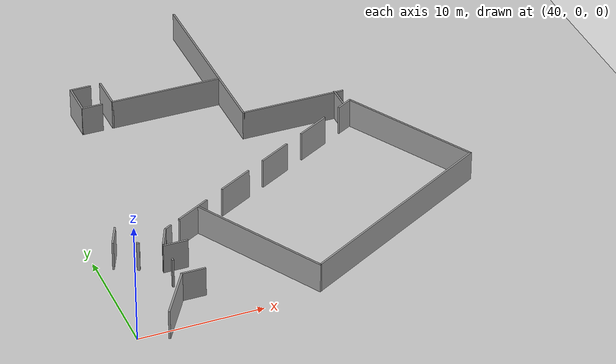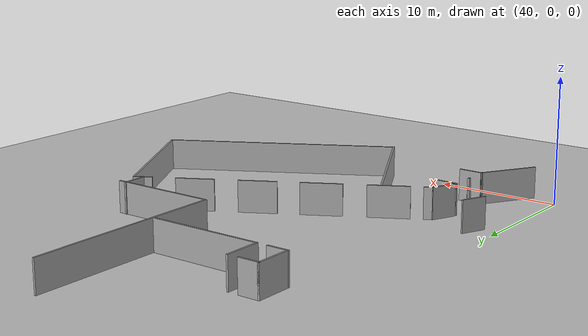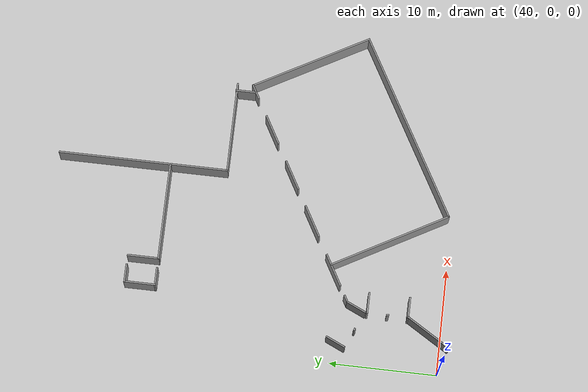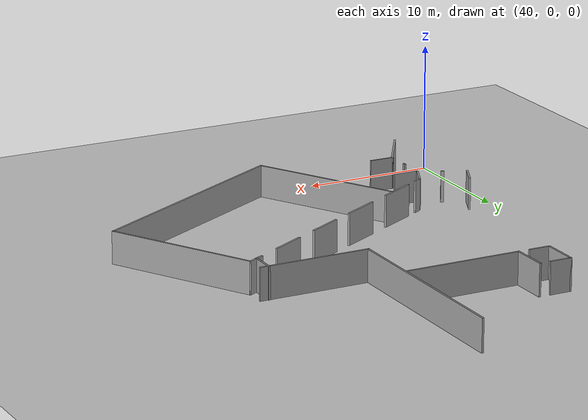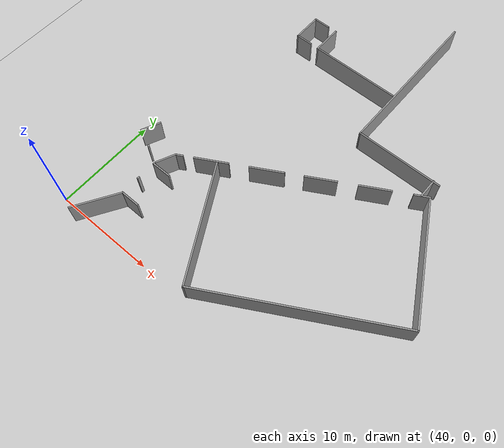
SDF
<sdf version="1.6">
 <world name="default">
  <model name="ground_plane">
   <static>1</static>
   <link name="link">
    <collision name="collision">
     <geometry><plane><normal>0 0 1</normal><size>100 100</size></plane></geometry>
     <surface>
      <contact><collide_bitmask>65535</collide_bitmask></contact>
      <friction><ode><mu>100</mu><mu2>50</mu2></ode></friction>
     </surface>
    </collision>
    <visual name="visual">
     <cast_shadows>0</cast_shadows>
     <geometry><plane><normal>0 0 1</normal><size>100 100</size></plane></geometry>
     <material>
      <script><uri>file://media/materials/scripts/gazebo.material</uri><name>Gazebo/Grey</name></script>
     </material>
    </visual>
   </link>
  </model>
  <model name="199D">
   <link name="Wall_52">
    <pose>9.42521 6e-05 0 0 0 -1.5708</pose>
    <visual name="Wall_52_Visual">
     <pose>0 0 1.25 0 -0 0</pose>
     <geometry><box><size>12 0.15 2.5</size></box></geometry>
     <material>
      <script><uri>file://media/materials/scripts/gazebo.material</uri><name>Gazebo/Grey</name></script>
      <ambient>1 1 1 1</ambient>
      <shader type="pixel"/>
     </material>
     <meta><layer>0</layer></meta>
    </visual>
    <collision name="Wall_52_Collision">
     <pose>0 0 1.25 0 -0 0</pose>
     <geometry><box><size>12 0.15 2.5</size></box></geometry>
     <surface>
      <friction>
       <ode><mu>1</mu><mu2>1</mu2><fdir1>0 0 0</fdir1><slip1>0</slip1><slip2>0</slip2></ode>
       <torsional>
        <coefficient>1</coefficient>
        <patch_radius>0</patch_radius>
        <surface_radius>0</surface_radius>
        <use_patch_radius>1</use_patch_radius>
        <ode><slip>0</slip></ode>
       </torsional>
      </friction>
      <bounce><restitution_coefficient>0</restitution_coefficient><threshold>1e+06</threshold></bounce>
      <contact>
       <collide_without_contact>0</collide_without_contact>
       <collide_without_contact_bitmask>1</collide_without_contact_bitmask>
       <collide_bitmask>1</collide_bitmask>
       <ode>
        <soft_cfm>0</soft_cfm>
        <soft_erp>0.2</soft_erp>
        <kp>1e+13</kp>
        <kd>1</kd>
        <max_vel>0.01</max_vel>
        <min_depth>0</min_depth>
       </ode>
       <bullet>
        <split_impulse>1</split_impulse>
        <split_impulse_penetration_threshold>-0.01</split_impulse_penetration_threshold>
        <soft_cfm>0</soft_cfm>
        <soft_erp>0.2</soft_erp>
        <kp>1e+13</kp>
        <kd>1</kd>
       </bullet>
      </contact>
     </surface>
    </collision>
   </link>
   <link name="Wall_53">
    <pose>-0 -5.925 0 0 0 -3.14159</pose>
    <visual name="Wall_53_Visual">
     <pose>0 0 1.25 0 -0 0</pose>
     <geometry><box><size>19 0.15 2.5</size></box></geometry>
     <material>
      <script><uri>file://media/materials/scripts/gazebo.material</uri><name>Gazebo/Grey</name></script>
      <ambient>1 1 1 1</ambient>
      <shader type="pixel"/>
     </material>
     <meta><layer>0</layer></meta>
    </visual>
    <collision name="Wall_53_Collision">
     <pose>0 0 1.25 0 -0 0</pose>
     <geometry><box><size>19 0.15 2.5</size></box></geometry>
     <surface>
      <friction>
       <ode><mu>1</mu><mu2>1</mu2><fdir1>0 0 0</fdir1><slip1>0</slip1><slip2>0</slip2></ode>
       <torsional>
        <coefficient>1</coefficient>
        <patch_radius>0</patch_radius>
        <surface_radius>0</surface_radius>
        <use_patch_radius>1</use_patch_radius>
        <ode><slip>0</slip></ode>
       </torsional>
      </friction>
      <bounce><restitution_coefficient>0</restitution_coefficient><threshold>1e+06</threshold></bounce>
      <contact>
       <collide_without_contact>0</collide_without_contact>
       <collide_without_contact_bitmask>1</collide_without_contact_bitmask>
       <collide_bitmask>1</collide_bitmask>
       <ode>
        <soft_cfm>0</soft_cfm>
        <soft_erp>0.2</soft_erp>
        <kp>1e+13</kp>
        <kd>1</kd>
        <max_vel>0.01</max_vel>
        <min_depth>0</min_depth>
       </ode>
       <bullet>
        <split_impulse>1</split_impulse>
        <split_impulse_penetration_threshold>-0.01</split_impulse_penetration_threshold>
        <soft_cfm>0</soft_cfm>
        <soft_erp>0.2</soft_erp>
        <kp>1e+13</kp>
        <kd>1</kd>
       </bullet>
      </contact>
     </surface>
    </collision>
   </link>
   <link name="Wall_54">
    <pose>-9.42521 -6e-05 0 0 -0 1.5708</pose>
    <visual name="Wall_54_Visual">
     <pose>0 0 1.25 0 -0 0</pose>
     <geometry><box><size>12 0.15 2.5</size></box></geometry>
     <material>
      <script><uri>file://media/materials/scripts/gazebo.material</uri><name>Gazebo/Grey</name></script>
      <ambient>1 1 1 1</ambient>
      <shader type="pixel"/>
     </material>
     <meta><layer>0</layer></meta>
    </visual>
    <collision name="Wall_54_Collision">
     <pose>0 0 1.25 0 -0 0</pose>
     <geometry><box><size>12 0.15 2.5</size></box></geometry>
     <surface>
      <friction>
       <ode><mu>1</mu><mu2>1</mu2><fdir1>0 0 0</fdir1><slip1>0</slip1><slip2>0</slip2></ode>
       <torsional>
        <coefficient>1</coefficient>
        <patch_radius>0</patch_radius>
        <surface_radius>0</surface_radius>
        <use_patch_radius>1</use_patch_radius>
        <ode><slip>0</slip></ode>
       </torsional>
      </friction>
      <bounce><restitution_coefficient>0</restitution_coefficient><threshold>1e+06</threshold></bounce>
      <contact>
       <collide_without_contact>0</collide_without_contact>
       <collide_without_contact_bitmask>1</collide_without_contact_bitmask>
       <collide_bitmask>1</collide_bitmask>
       <ode>
        <soft_cfm>0</soft_cfm>
        <soft_erp>0.2</soft_erp>
        <kp>1e+13</kp>
        <kd>1</kd>
        <max_vel>0.01</max_vel>
        <min_depth>0</min_depth>
       </ode>
       <bullet>
        <split_impulse>1</split_impulse>
        <split_impulse_penetration_threshold>-0.01</split_impulse_penetration_threshold>
        <soft_cfm>0</soft_cfm>
        <soft_erp>0.2</soft_erp>
        <kp>1e+13</kp>
        <kd>1</kd>
       </bullet>
      </contact>
     </surface>
    </collision>
   </link>
   <static>1</static>
   <pose>59.9873 10.1778 0 0 -0 0.50826</pose>
  </model>
  <model name="4m_wall_0">
   <link name="Wall_0">
    <pose>0.010109 0.248804 0 0 -0 1.67919</pose>
    <inertial>
     <inertia><ixx>0</ixx><ixy>0</ixy><ixz>0</ixz><iyy>0</iyy><iyz>0</iyz><izz>0</izz></inertia>
     <mass>0</mass>
    </inertial>
    <visual name="Wall_0_Visual">
     <pose>0 0 1.25 0 -0 0</pose>
     <geometry><box><size>4.81886 0.15 2.5</size></box></geometry>
     <material>
      <script><uri>file://media/materials/scripts/gazebo.material</uri><name>Gazebo/Grey</name></script>
      <ambient>1 1 1 1</ambient>
      <shader type="pixel"/>
     </material>
     <meta><layer>0</layer></meta>
    </visual>
    <collision name="Wall_0_Collision">
     <pose>0 0 1.25 0 -0 0</pose>
     <geometry><box><size>4.81886 0.15 2.5</size></box></geometry>
     <surface>
      <friction>
       <ode><mu>1</mu><mu2>1</mu2><fdir1>0 0 0</fdir1><slip1>0</slip1><slip2>0</slip2></ode>
       <torsional>
        <coefficient>1</coefficient>
        <patch_radius>0</patch_radius>
        <surface_radius>0</surface_radius>
        <use_patch_radius>1</use_patch_radius>
        <ode><slip>0</slip></ode>
       </torsional>
      </friction>
      <bounce><restitution_coefficient>0</restitution_coefficient><threshold>1e+06</threshold></bounce>
      <contact>
       <collide_without_contact>0</collide_without_contact>
       <collide_without_contact_bitmask>1</collide_without_contact_bitmask>
       <collide_bitmask>1</collide_bitmask>
       <ode>
        <soft_cfm>0</soft_cfm>
        <soft_erp>0.2</soft_erp>
        <kp>1e+13</kp>
        <kd>1</kd>
        <max_vel>0.01</max_vel>
        <min_depth>0</min_depth>
       </ode>
       <bullet>
        <split_impulse>1</split_impulse>
        <split_impulse_penetration_threshold>-0.01</split_impulse_penetration_threshold>
        <soft_cfm>0</soft_cfm>
        <soft_erp>0.2</soft_erp>
        <kp>1e+13</kp>
        <kd>1</kd>
       </bullet>
      </contact>
     </surface>
    </collision>
   </link>
   <static>1</static>
   <pose>43.3173 1.04811 0 0 0 -0.66127</pose>
  </model>
  <model name="longWall">
   <link name="Wall_13">
    <pose>-4.259 0.89147 0 0 0 -1.5708</pose>
    <visual name="Wall_13_Visual">
     <pose>0 0 1.25 0 -0 0</pose>
     <geometry><box><size>16 0.15 2.5</size></box></geometry>
     <material>
      <script><uri>file://media/materials/scripts/gazebo.material</uri><name>Gazebo/Grey</name></script>
      <ambient>1 1 1 1</ambient>
      <shader type="pixel"/>
     </material>
     <meta><layer>0</layer></meta>
    </visual>
    <collision name="Wall_13_Collision">
     <pose>0 0 1.25 0 -0 0</pose>
     <geometry><box><size>16 0.15 2.5</size></box></geometry>
     <surface>
      <friction>
       <ode><mu>1</mu><mu2>1</mu2><fdir1>0 0 0</fdir1><slip1>0</slip1><slip2>0</slip2></ode>
       <torsional>
        <coefficient>1</coefficient>
        <patch_radius>0</patch_radius>
        <surface_radius>0</surface_radius>
        <use_patch_radius>1</use_patch_radius>
        <ode><slip>0</slip></ode>
       </torsional>
      </friction>
      <bounce><restitution_coefficient>0</restitution_coefficient><threshold>1e+06</threshold></bounce>
      <contact>
       <collide_without_contact>0</collide_without_contact>
       <collide_without_contact_bitmask>1</collide_without_contact_bitmask>
       <collide_bitmask>1</collide_bitmask>
       <ode>
        <soft_cfm>0</soft_cfm>
        <soft_erp>0.2</soft_erp>
        <kp>1e+13</kp>
        <kd>1</kd>
        <max_vel>0.01</max_vel>
        <min_depth>0</min_depth>
       </ode>
       <bullet>
        <split_impulse>1</split_impulse>
        <split_impulse_penetration_threshold>-0.01</split_impulse_penetration_threshold>
        <soft_cfm>0</soft_cfm>
        <soft_erp>0.2</soft_erp>
        <kp>1e+13</kp>
        <kd>1</kd>
       </bullet>
      </contact>
     </surface>
    </collision>
   </link>
   <link name="Wall_14">
    <pose>0 -7.03353 0 0 -0 0</pose>
    <visual name="Wall_14_Visual">
     <pose>0 0 1.25 0 -0 0</pose>
     <geometry><box><size>8.668 0.15 2.5</size></box></geometry>
     <material>
      <script><uri>file://media/materials/scripts/gazebo.material</uri><name>Gazebo/Grey</name></script>
      <ambient>1 1 1 1</ambient>
      <shader type="pixel"/>
     </material>
     <meta><layer>0</layer></meta>
    </visual>
    <collision name="Wall_14_Collision">
     <pose>0 0 1.25 0 -0 0</pose>
     <geometry><box><size>8.668 0.15 2.5</size></box></geometry>
     <surface>
      <friction>
       <ode><mu>1</mu><mu2>1</mu2><fdir1>0 0 0</fdir1><slip1>0</slip1><slip2>0</slip2></ode>
       <torsional>
        <coefficient>1</coefficient>
        <patch_radius>0</patch_radius>
        <surface_radius>0</surface_radius>
        <use_patch_radius>1</use_patch_radius>
        <ode><slip>0</slip></ode>
       </torsional>
      </friction>
      <bounce><restitution_coefficient>0</restitution_coefficient><threshold>1e+06</threshold></bounce>
      <contact>
       <collide_without_contact>0</collide_without_contact>
       <collide_without_contact_bitmask>1</collide_without_contact_bitmask>
       <collide_bitmask>1</collide_bitmask>
       <ode>
        <soft_cfm>0</soft_cfm>
        <soft_erp>0.2</soft_erp>
        <kp>1e+13</kp>
        <kd>1</kd>
        <max_vel>0.01</max_vel>
        <min_depth>0</min_depth>
       </ode>
       <bullet>
        <split_impulse>1</split_impulse>
        <split_impulse_penetration_threshold>-0.01</split_impulse_penetration_threshold>
        <soft_cfm>0</soft_cfm>
        <soft_erp>0.2</soft_erp>
        <kp>1e+13</kp>
        <kd>1</kd>
       </bullet>
      </contact>
     </surface>
    </collision>
   </link>
   <link name="Wall_17">
    <pose>3.63759 -7.89147 0 0 0 -1.5708</pose>
    <visual name="Wall_17_Visual">
     <pose>0 0 1.25 0 -0 0</pose>
     <geometry><box><size>2 0.15 2.5</size></box></geometry>
     <material>
      <script><uri>file://media/materials/scripts/gazebo.material</uri><name>Gazebo/Grey</name></script>
      <ambient>1 1 1 1</ambient>
      <shader type="pixel"/>
     </material>
     <meta><layer>0</layer></meta>
    </visual>
    <collision name="Wall_17_Collision">
     <pose>0 0 1.25 0 -0 0</pose>
     <geometry><box><size>2 0.15 2.5</size></box></geometry>
     <surface>
      <friction>
       <ode><mu>1</mu><mu2>1</mu2><fdir1>0 0 0</fdir1><slip1>0</slip1><slip2>0</slip2></ode>
       <torsional>
        <coefficient>1</coefficient>
        <patch_radius>0</patch_radius>
        <surface_radius>0</surface_radius>
        <use_patch_radius>1</use_patch_radius>
        <ode><slip>0</slip></ode>
       </torsional>
      </friction>
      <bounce><restitution_coefficient>0</restitution_coefficient><threshold>1e+06</threshold></bounce>
      <contact>
       <collide_without_contact>0</collide_without_contact>
       <collide_without_contact_bitmask>1</collide_without_contact_bitmask>
       <collide_bitmask>1</collide_bitmask>
       <ode>
        <soft_cfm>0</soft_cfm>
        <soft_erp>0.2</soft_erp>
        <kp>1e+13</kp>
        <kd>1</kd>
        <max_vel>0.01</max_vel>
        <min_depth>0</min_depth>
       </ode>
       <bullet>
        <split_impulse>1</split_impulse>
        <split_impulse_penetration_threshold>-0.01</split_impulse_penetration_threshold>
        <soft_cfm>0</soft_cfm>
        <soft_erp>0.2</soft_erp>
        <kp>1e+13</kp>
        <kd>1</kd>
       </bullet>
      </contact>
     </surface>
    </collision>
   </link>
   <static>1</static>
   <pose>60.9863 28.5267 0 0 -0 0</pose>
  </model>
  <model name="DoubleDoors">
   <link name="Wall_46">
    <pose>1.90014 5.9e-05 0 0 0 -1.5708</pose>
    <visual name="Wall_46_Visual">
     <pose>0 0 1.25 0 -0 0</pose>
     <geometry><box><size>2 0.15 2.5</size></box></geometry>
     <material>
      <script><uri>file://media/materials/scripts/gazebo.material</uri><name>Gazebo/Grey</name></script>
      <ambient>1 1 1 1</ambient>
      <shader type="pixel"/>
     </material>
     <meta><layer>0</layer></meta>
    </visual>
    <collision name="Wall_46_Collision">
     <pose>0 0 1.25 0 -0 0</pose>
     <geometry><box><size>2 0.15 2.5</size></box></geometry>
     <surface>
      <friction>
       <ode><mu>1</mu><mu2>1</mu2><fdir1>0 0 0</fdir1><slip1>0</slip1><slip2>0</slip2></ode>
       <torsional>
        <coefficient>1</coefficient>
        <patch_radius>0</patch_radius>
        <surface_radius>0</surface_radius>
        <use_patch_radius>1</use_patch_radius>
        <ode><slip>0</slip></ode>
       </torsional>
      </friction>
      <bounce><restitution_coefficient>0</restitution_coefficient><threshold>1e+06</threshold></bounce>
      <contact>
       <collide_without_contact>0</collide_without_contact>
       <collide_without_contact_bitmask>1</collide_without_contact_bitmask>
       <collide_bitmask>1</collide_bitmask>
       <ode>
        <soft_cfm>0</soft_cfm>
        <soft_erp>0.2</soft_erp>
        <kp>1e+13</kp>
        <kd>1</kd>
        <max_vel>0.01</max_vel>
        <min_depth>0</min_depth>
       </ode>
       <bullet>
        <split_impulse>1</split_impulse>
        <split_impulse_penetration_threshold>-0.01</split_impulse_penetration_threshold>
        <soft_cfm>0</soft_cfm>
        <soft_erp>0.2</soft_erp>
        <kp>1e+13</kp>
        <kd>1</kd>
       </bullet>
      </contact>
     </surface>
    </collision>
   </link>
   <link name="Wall_48">
    <pose>7e-06 -0.924849 0 0 -0 3.13982</pose>
    <visual name="Wall_48_Visual">
     <pose>0 0 1.25 0 -0 0</pose>
     <geometry><box><size>0.25 0.15 2.5</size></box></geometry>
     <material>
      <script><uri>file://media/materials/scripts/gazebo.material</uri><name>Gazebo/Grey</name></script>
      <ambient>1 1 1 1</ambient>
      <shader type="pixel"/>
     </material>
     <meta><layer>0</layer></meta>
    </visual>
    <collision name="Wall_48_Collision">
     <pose>0 0 1.25 0 -0 0</pose>
     <geometry><box><size>0.25 0.15 2.5</size></box></geometry>
     <surface>
      <friction>
       <ode><mu>1</mu><mu2>1</mu2><fdir1>0 0 0</fdir1><slip1>0</slip1><slip2>0</slip2></ode>
       <torsional>
        <coefficient>1</coefficient>
        <patch_radius>0</patch_radius>
        <surface_radius>0</surface_radius>
        <use_patch_radius>1</use_patch_radius>
        <ode><slip>0</slip></ode>
       </torsional>
      </friction>
      <bounce><restitution_coefficient>0</restitution_coefficient><threshold>1e+06</threshold></bounce>
      <contact>
       <collide_without_contact>0</collide_without_contact>
       <collide_without_contact_bitmask>1</collide_without_contact_bitmask>
       <collide_bitmask>1</collide_bitmask>
       <ode>
        <soft_cfm>0</soft_cfm>
        <soft_erp>0.2</soft_erp>
        <kp>1e+13</kp>
        <kd>1</kd>
        <max_vel>0.01</max_vel>
        <min_depth>0</min_depth>
       </ode>
       <bullet>
        <split_impulse>1</split_impulse>
        <split_impulse_penetration_threshold>-0.01</split_impulse_penetration_threshold>
        <soft_cfm>0</soft_cfm>
        <soft_erp>0.2</soft_erp>
        <kp>1e+13</kp>
        <kd>1</kd>
       </bullet>
      </contact>
     </surface>
    </collision>
   </link>
   <link name="Wall_50">
    <pose>-1.9 0.00015 0 0 -0 1.57065</pose>
    <visual name="Wall_50_Visual">
     <pose>0 0 1.25 0 -0 0</pose>
     <geometry><box><size>1.99982 0.15 2.5</size></box></geometry>
     <material>
      <script><uri>file://media/materials/scripts/gazebo.material</uri><name>Gazebo/Grey</name></script>
      <ambient>1 1 1 1</ambient>
      <shader type="pixel"/>
     </material>
     <meta><layer>0</layer></meta>
    </visual>
    <collision name="Wall_50_Collision">
     <pose>0 0 1.25 0 -0 0</pose>
     <geometry><box><size>1.99982 0.15 2.5</size></box></geometry>
     <surface>
      <friction>
       <ode><mu>1</mu><mu2>1</mu2><fdir1>0 0 0</fdir1><slip1>0</slip1><slip2>0</slip2></ode>
       <torsional>
        <coefficient>1</coefficient>
        <patch_radius>0</patch_radius>
        <surface_radius>0</surface_radius>
        <use_patch_radius>1</use_patch_radius>
        <ode><slip>0</slip></ode>
       </torsional>
      </friction>
      <bounce><restitution_coefficient>0</restitution_coefficient><threshold>1e+06</threshold></bounce>
      <contact>
       <collide_without_contact>0</collide_without_contact>
       <collide_without_contact_bitmask>1</collide_without_contact_bitmask>
       <collide_bitmask>1</collide_bitmask>
       <ode>
        <soft_cfm>0</soft_cfm>
        <soft_erp>0.2</soft_erp>
        <kp>1e+13</kp>
        <kd>1</kd>
        <max_vel>0.01</max_vel>
        <min_depth>0</min_depth>
       </ode>
       <bullet>
        <split_impulse>1</split_impulse>
        <split_impulse_penetration_threshold>-0.01</split_impulse_penetration_threshold>
        <soft_cfm>0</soft_cfm>
        <soft_erp>0.2</soft_erp>
        <kp>1e+13</kp>
        <kd>1</kd>
       </bullet>
      </contact>
     </surface>
    </collision>
   </link>
   <static>1</static>
   <pose>43.3671 8.87466 0 0 0 -0.425005</pose>
  </model>
  <model name="DoubleDoors_0">
   <link name="Wall_46">
    <pose>1.90014 6e-05 0 0 0 -1.5708</pose>
    <visual name="Wall_46_Visual">
     <pose>0 0 1.25 0 -0 0</pose>
     <geometry><box><size>2 0.15 2.5</size></box></geometry>
     <material>
      <script><uri>file://media/materials/scripts/gazebo.material</uri><name>Gazebo/Grey</name></script>
      <ambient>1 1 1 1</ambient>
      <shader type="pixel"/>
     </material>
     <meta><layer>0</layer></meta>
    </visual>
    <collision name="Wall_46_Collision">
     <pose>0 0 1.25 0 -0 0</pose>
     <geometry><box><size>2 0.15 2.5</size></box></geometry>
     <surface>
      <friction>
       <ode><mu>1</mu><mu2>1</mu2><fdir1>0 0 0</fdir1><slip1>0</slip1><slip2>0</slip2></ode>
       <torsional>
        <coefficient>1</coefficient>
        <patch_radius>0</patch_radius>
        <surface_radius>0</surface_radius>
        <use_patch_radius>1</use_patch_radius>
        <ode><slip>0</slip></ode>
       </torsional>
      </friction>
      <bounce><restitution_coefficient>0</restitution_coefficient><threshold>1e+06</threshold></bounce>
      <contact>
       <collide_without_contact>0</collide_without_contact>
       <collide_without_contact_bitmask>1</collide_without_contact_bitmask>
       <collide_bitmask>1</collide_bitmask>
       <ode>
        <soft_cfm>0</soft_cfm>
        <soft_erp>0.2</soft_erp>
        <kp>1e+13</kp>
        <kd>1</kd>
        <max_vel>0.01</max_vel>
        <min_depth>0</min_depth>
       </ode>
       <bullet>
        <split_impulse>1</split_impulse>
        <split_impulse_penetration_threshold>-0.01</split_impulse_penetration_threshold>
        <soft_cfm>0</soft_cfm>
        <soft_erp>0.2</soft_erp>
        <kp>1e+13</kp>
        <kd>1</kd>
       </bullet>
      </contact>
     </surface>
    </collision>
   </link>
   <link name="Wall_48">
    <pose>5e-06 -0.924851 0 0 -0 3.13982</pose>
    <visual name="Wall_48_Visual">
     <pose>0 0 1.25 0 -0 0</pose>
     <geometry><box><size>0.25 0.15 2.5</size></box></geometry>
     <material>
      <script><uri>file://media/materials/scripts/gazebo.material</uri><name>Gazebo/Grey</name></script>
      <ambient>1 1 1 1</ambient>
      <shader type="pixel"/>
     </material>
     <meta><layer>0</layer></meta>
    </visual>
    <collision name="Wall_48_Collision">
     <pose>0 0 1.25 0 -0 0</pose>
     <geometry><box><size>0.25 0.15 2.5</size></box></geometry>
     <surface>
      <friction>
       <ode><mu>1</mu><mu2>1</mu2><fdir1>0 0 0</fdir1><slip1>0</slip1><slip2>0</slip2></ode>
       <torsional>
        <coefficient>1</coefficient>
        <patch_radius>0</patch_radius>
        <surface_radius>0</surface_radius>
        <use_patch_radius>1</use_patch_radius>
        <ode><slip>0</slip></ode>
       </torsional>
      </friction>
      <bounce><restitution_coefficient>0</restitution_coefficient><threshold>1e+06</threshold></bounce>
      <contact>
       <collide_without_contact>0</collide_without_contact>
       <collide_without_contact_bitmask>1</collide_without_contact_bitmask>
       <collide_bitmask>1</collide_bitmask>
       <ode>
        <soft_cfm>0</soft_cfm>
        <soft_erp>0.2</soft_erp>
        <kp>1e+13</kp>
        <kd>1</kd>
        <max_vel>0.01</max_vel>
        <min_depth>0</min_depth>
       </ode>
       <bullet>
        <split_impulse>1</split_impulse>
        <split_impulse_penetration_threshold>-0.01</split_impulse_penetration_threshold>
        <soft_cfm>0</soft_cfm>
        <soft_erp>0.2</soft_erp>
        <kp>1e+13</kp>
        <kd>1</kd>
       </bullet>
      </contact>
     </surface>
    </collision>
   </link>
   <link name="Wall_50">
    <pose>-1.9 0.00015 0 0 -0 1.57065</pose>
    <visual name="Wall_50_Visual">
     <pose>0 0 1.25 0 -0 0</pose>
     <geometry><box><size>1.99982 0.15 2.5</size></box></geometry>
     <material>
      <script><uri>file://media/materials/scripts/gazebo.material</uri><name>Gazebo/Grey</name></script>
      <ambient>1 1 1 1</ambient>
      <shader type="pixel"/>
     </material>
     <meta><layer>0</layer></meta>
    </visual>
    <collision name="Wall_50_Collision">
     <pose>0 0 1.25 0 -0 0</pose>
     <geometry><box><size>1.99982 0.15 2.5</size></box></geometry>
     <surface>
      <friction>
       <ode><mu>1</mu><mu2>1</mu2><fdir1>0 0 0</fdir1><slip1>0</slip1><slip2>0</slip2></ode>
       <torsional>
        <coefficient>1</coefficient>
        <patch_radius>0</patch_radius>
        <surface_radius>0</surface_radius>
        <use_patch_radius>1</use_patch_radius>
        <ode><slip>0</slip></ode>
       </torsional>
      </friction>
      <bounce><restitution_coefficient>0</restitution_coefficient><threshold>1e+06</threshold></bounce>
      <contact>
       <collide_without_contact>0</collide_without_contact>
       <collide_without_contact_bitmask>1</collide_without_contact_bitmask>
       <collide_bitmask>1</collide_bitmask>
       <ode>
        <soft_cfm>0</soft_cfm>
        <soft_erp>0.2</soft_erp>
        <kp>1e+13</kp>
        <kd>1</kd>
        <max_vel>0.01</max_vel>
        <min_depth>0</min_depth>
       </ode>
       <bullet>
        <split_impulse>1</split_impulse>
        <split_impulse_penetration_threshold>-0.01</split_impulse_penetration_threshold>
        <soft_cfm>0</soft_cfm>
        <soft_erp>0.2</soft_erp>
        <kp>1e+13</kp>
        <kd>1</kd>
       </bullet>
      </contact>
     </surface>
    </collision>
   </link>
   <static>1</static>
   <pose>45.6007 5.1223 0 0 0 -1.57504</pose>
  </model>
  <model name="199">
   <link name="Wall_26">
    <pose>10.6 -2e-06 0 0 -0 3.14159</pose>
    <visual name="Wall_26_Visual">
     <pose>0 0 1.25 0 -0 0</pose>
     <geometry><box><size>1.5 0.15 2.5</size></box></geometry>
     <material>
      <script><uri>file://media/materials/scripts/gazebo.material</uri><name>Gazebo/Grey</name></script>
      <ambient>1 1 1 1</ambient>
      <shader type="pixel"/>
     </material>
     <meta><layer>0</layer></meta>
    </visual>
    <collision name="Wall_26_Collision">
     <pose>0 0 1.25 0 -0 0</pose>
     <geometry><box><size>1.5 0.15 2.5</size></box></geometry>
     <surface>
      <friction>
       <ode><mu>1</mu><mu2>1</mu2><fdir1>0 0 0</fdir1><slip1>0</slip1><slip2>0</slip2></ode>
       <torsional>
        <coefficient>1</coefficient>
        <patch_radius>0</patch_radius>
        <surface_radius>0</surface_radius>
        <use_patch_radius>1</use_patch_radius>
        <ode><slip>0</slip></ode>
       </torsional>
      </friction>
      <bounce><restitution_coefficient>0</restitution_coefficient><threshold>1e+06</threshold></bounce>
      <contact>
       <collide_without_contact>0</collide_without_contact>
       <collide_without_contact_bitmask>1</collide_without_contact_bitmask>
       <collide_bitmask>1</collide_bitmask>
       <ode>
        <soft_cfm>0</soft_cfm>
        <soft_erp>0.2</soft_erp>
        <kp>1e+13</kp>
        <kd>1</kd>
        <max_vel>0.01</max_vel>
        <min_depth>0</min_depth>
       </ode>
       <bullet>
        <split_impulse>1</split_impulse>
        <split_impulse_penetration_threshold>-0.01</split_impulse_penetration_threshold>
        <soft_cfm>0</soft_cfm>
        <soft_erp>0.2</soft_erp>
        <kp>1e+13</kp>
        <kd>1</kd>
       </bullet>
      </contact>
     </surface>
    </collision>
   </link>
   <link name="Wall_29">
    <pose>6.55 -0 0 0 -0 3.14159</pose>
    <visual name="Wall_29_Visual">
     <pose>0 0 1.25 0 -0 0</pose>
     <geometry><box><size>3 0.15 2.5</size></box></geometry>
     <material>
      <script><uri>file://media/materials/scripts/gazebo.material</uri><name>Gazebo/Grey</name></script>
      <ambient>1 1 1 1</ambient>
      <shader type="pixel"/>
     </material>
     <meta><layer>0</layer></meta>
    </visual>
    <collision name="Wall_29_Collision">
     <pose>0 0 1.25 0 -0 0</pose>
     <geometry><box><size>3 0.15 2.5</size></box></geometry>
     <surface>
      <friction>
       <ode><mu>1</mu><mu2>1</mu2><fdir1>0 0 0</fdir1><slip1>0</slip1><slip2>0</slip2></ode>
       <torsional>
        <coefficient>1</coefficient>
        <patch_radius>0</patch_radius>
        <surface_radius>0</surface_radius>
        <use_patch_radius>1</use_patch_radius>
        <ode><slip>0</slip></ode>
       </torsional>
      </friction>
      <bounce><restitution_coefficient>0</restitution_coefficient><threshold>1e+06</threshold></bounce>
      <contact>
       <collide_without_contact>0</collide_without_contact>
       <collide_without_contact_bitmask>1</collide_without_contact_bitmask>
       <collide_bitmask>1</collide_bitmask>
       <ode>
        <soft_cfm>0</soft_cfm>
        <soft_erp>0.2</soft_erp>
        <kp>1e+13</kp>
        <kd>1</kd>
        <max_vel>0.01</max_vel>
        <min_depth>0</min_depth>
       </ode>
       <bullet>
        <split_impulse>1</split_impulse>
        <split_impulse_penetration_threshold>-0.01</split_impulse_penetration_threshold>
        <soft_cfm>0</soft_cfm>
        <soft_erp>0.2</soft_erp>
        <kp>1e+13</kp>
        <kd>1</kd>
       </bullet>
      </contact>
     </surface>
    </collision>
   </link>
   <link name="Wall_32">
    <pose>1.75 3e-06 0 0 -0 3.14159</pose>
    <visual name="Wall_32_Visual">
     <pose>0 0 1.25 0 -0 0</pose>
     <geometry><box><size>3 0.15 2.5</size></box></geometry>
     <material>
      <script><uri>file://media/materials/scripts/gazebo.material</uri><name>Gazebo/Grey</name></script>
      <ambient>1 1 1 1</ambient>
      <shader type="pixel"/>
     </material>
     <meta><layer>0</layer></meta>
    </visual>
    <collision name="Wall_32_Collision">
     <pose>0 0 1.25 0 -0 0</pose>
     <geometry><box><size>3 0.15 2.5</size></box></geometry>
     <surface>
      <friction>
       <ode><mu>1</mu><mu2>1</mu2><fdir1>0 0 0</fdir1><slip1>0</slip1><slip2>0</slip2></ode>
       <torsional>
        <coefficient>1</coefficient>
        <patch_radius>0</patch_radius>
        <surface_radius>0</surface_radius>
        <use_patch_radius>1</use_patch_radius>
        <ode><slip>0</slip></ode>
       </torsional>
      </friction>
      <bounce><restitution_coefficient>0</restitution_coefficient><threshold>1e+06</threshold></bounce>
      <contact>
       <collide_without_contact>0</collide_without_contact>
       <collide_without_contact_bitmask>1</collide_without_contact_bitmask>
       <collide_bitmask>1</collide_bitmask>
       <ode>
        <soft_cfm>0</soft_cfm>
        <soft_erp>0.2</soft_erp>
        <kp>1e+13</kp>
        <kd>1</kd>
        <max_vel>0.01</max_vel>
        <min_depth>0</min_depth>
       </ode>
       <bullet>
        <split_impulse>1</split_impulse>
        <split_impulse_penetration_threshold>-0.01</split_impulse_penetration_threshold>
        <soft_cfm>0</soft_cfm>
        <soft_erp>0.2</soft_erp>
        <kp>1e+13</kp>
        <kd>1</kd>
       </bullet>
      </contact>
     </surface>
    </collision>
   </link>
   <link name="Wall_34">
    <pose>-3.075 -1e-06 0 0 -0 3.14159</pose>
    <visual name="Wall_34_Visual">
     <pose>0 0 1.25 0 -0 0</pose>
     <geometry><box><size>3.25 0.15 2.5</size></box></geometry>
     <material>
      <script><uri>file://media/materials/scripts/gazebo.material</uri><name>Gazebo/Grey</name></script>
      <ambient>1 1 1 1</ambient>
      <shader type="pixel"/>
     </material>
     <meta><layer>0</layer></meta>
    </visual>
    <collision name="Wall_34_Collision">
     <pose>0 0 1.25 0 -0 0</pose>
     <geometry><box><size>3.25 0.15 2.5</size></box></geometry>
     <surface>
      <friction>
       <ode><mu>1</mu><mu2>1</mu2><fdir1>0 0 0</fdir1><slip1>0</slip1><slip2>0</slip2></ode>
       <torsional>
        <coefficient>1</coefficient>
        <patch_radius>0</patch_radius>
        <surface_radius>0</surface_radius>
        <use_patch_radius>1</use_patch_radius>
        <ode><slip>0</slip></ode>
       </torsional>
      </friction>
      <bounce><restitution_coefficient>0</restitution_coefficient><threshold>1e+06</threshold></bounce>
      <contact>
       <collide_without_contact>0</collide_without_contact>
       <collide_without_contact_bitmask>1</collide_without_contact_bitmask>
       <collide_bitmask>1</collide_bitmask>
       <ode>
        <soft_cfm>0</soft_cfm>
        <soft_erp>0.2</soft_erp>
        <kp>1e+13</kp>
        <kd>1</kd>
        <max_vel>0.01</max_vel>
        <min_depth>0</min_depth>
       </ode>
       <bullet>
        <split_impulse>1</split_impulse>
        <split_impulse_penetration_threshold>-0.01</split_impulse_penetration_threshold>
        <soft_cfm>0</soft_cfm>
        <soft_erp>0.2</soft_erp>
        <kp>1e+13</kp>
        <kd>1</kd>
       </bullet>
      </contact>
     </surface>
    </collision>
   </link>
   <link name="Wall_37">
    <pose>-8.125 2e-06 0 0 -0 3.14159</pose>
    <visual name="Wall_37_Visual">
     <pose>0 0 1.25 0 -0 0</pose>
     <geometry><box><size>3.25 0.15 2.5</size></box></geometry>
     <material>
      <script><uri>file://media/materials/scripts/gazebo.material</uri><name>Gazebo/Grey</name></script>
      <ambient>1 1 1 1</ambient>
      <shader type="pixel"/>
     </material>
     <meta><layer>0</layer></meta>
    </visual>
    <collision name="Wall_37_Collision">
     <pose>0 0 1.25 0 -0 0</pose>
     <geometry><box><size>3.25 0.15 2.5</size></box></geometry>
     <surface>
      <friction>
       <ode><mu>1</mu><mu2>1</mu2><fdir1>0 0 0</fdir1><slip1>0</slip1><slip2>0</slip2></ode>
       <torsional>
        <coefficient>1</coefficient>
        <patch_radius>0</patch_radius>
        <surface_radius>0</surface_radius>
        <use_patch_radius>1</use_patch_radius>
        <ode><slip>0</slip></ode>
       </torsional>
      </friction>
      <bounce><restitution_coefficient>0</restitution_coefficient><threshold>1e+06</threshold></bounce>
      <contact>
       <collide_without_contact>0</collide_without_contact>
       <collide_without_contact_bitmask>1</collide_without_contact_bitmask>
       <collide_bitmask>1</collide_bitmask>
       <ode>
        <soft_cfm>0</soft_cfm>
        <soft_erp>0.2</soft_erp>
        <kp>1e+13</kp>
        <kd>1</kd>
        <max_vel>0.01</max_vel>
        <min_depth>0</min_depth>
       </ode>
       <bullet>
        <split_impulse>1</split_impulse>
        <split_impulse_penetration_threshold>-0.01</split_impulse_penetration_threshold>
        <soft_cfm>0</soft_cfm>
        <soft_erp>0.2</soft_erp>
        <kp>1e+13</kp>
        <kd>1</kd>
       </bullet>
      </contact>
     </surface>
    </collision>
   </link>
   <link name="Wall_44">
    <pose>-11.025 -1e-06 0 0 -0 3.14159</pose>
    <visual name="Wall_44_Visual">
     <pose>0 0 1.25 0 -0 0</pose>
     <geometry><box><size>0.65 0.15 2.5</size></box></geometry>
     <material>
      <script><uri>file://media/materials/scripts/gazebo.material</uri><name>Gazebo/Grey</name></script>
      <ambient>1 1 1 1</ambient>
      <shader type="pixel"/>
     </material>
     <meta><layer>0</layer></meta>
    </visual>
    <collision name="Wall_44_Collision">
     <pose>0 0 1.25 0 -0 0</pose>
     <geometry><box><size>0.65 0.15 2.5</size></box></geometry>
     <surface>
      <friction>
       <ode><mu>1</mu><mu2>1</mu2><fdir1>0 0 0</fdir1><slip1>0</slip1><slip2>0</slip2></ode>
       <torsional>
        <coefficient>1</coefficient>
        <patch_radius>0</patch_radius>
        <surface_radius>0</surface_radius>
        <use_patch_radius>1</use_patch_radius>
        <ode><slip>0</slip></ode>
       </torsional>
      </friction>
      <bounce><restitution_coefficient>0</restitution_coefficient><threshold>1e+06</threshold></bounce>
      <contact>
       <collide_without_contact>0</collide_without_contact>
       <collide_without_contact_bitmask>1</collide_without_contact_bitmask>
       <collide_bitmask>1</collide_bitmask>
       <ode>
        <soft_cfm>0</soft_cfm>
        <soft_erp>0.2</soft_erp>
        <kp>1e+13</kp>
        <kd>1</kd>
        <max_vel>0.01</max_vel>
        <min_depth>0</min_depth>
       </ode>
       <bullet>
        <split_impulse>1</split_impulse>
        <split_impulse_penetration_threshold>-0.01</split_impulse_penetration_threshold>
        <soft_cfm>0</soft_cfm>
        <soft_erp>0.2</soft_erp>
        <kp>1e+13</kp>
        <kd>1</kd>
       </bullet>
      </contact>
     </surface>
    </collision>
   </link>
   <static>1</static>
   <pose>55.4366 14.518 0 0 -0 0.509766</pose>
  </model>
  <model name="112B">
   <link name="Wall_10">
    <pose>-4.975 1.425 0 0 -0 0</pose>
    <visual name="Wall_10_Visual">
     <pose>0 0 1.25 0 -0 0</pose>
     <geometry><box><size>1.75 0.15 2.5</size></box></geometry>
     <material>
      <script><uri>file://media/materials/scripts/gazebo.material</uri><name>Gazebo/Grey</name></script>
      <ambient>1 1 1 1</ambient>
      <shader type="pixel"/>
     </material>
     <meta><layer>0</layer></meta>
    </visual>
    <collision name="Wall_10_Collision">
     <pose>0 0 1.25 0 -0 0</pose>
     <geometry><box><size>1.75 0.15 2.5</size></box></geometry>
     <surface>
      <friction>
       <ode><mu>1</mu><mu2>1</mu2><fdir1>0 0 0</fdir1><slip1>0</slip1><slip2>0</slip2></ode>
       <torsional>
        <coefficient>1</coefficient>
        <patch_radius>0</patch_radius>
        <surface_radius>0</surface_radius>
        <use_patch_radius>1</use_patch_radius>
        <ode><slip>0</slip></ode>
       </torsional>
      </friction>
      <bounce><restitution_coefficient>0</restitution_coefficient><threshold>1e+06</threshold></bounce>
      <contact>
       <collide_without_contact>0</collide_without_contact>
       <collide_without_contact_bitmask>1</collide_without_contact_bitmask>
       <collide_bitmask>1</collide_bitmask>
       <ode>
        <soft_cfm>0</soft_cfm>
        <soft_erp>0.2</soft_erp>
        <kp>1e+13</kp>
        <kd>1</kd>
        <max_vel>0.01</max_vel>
        <min_depth>0</min_depth>
       </ode>
       <bullet>
        <split_impulse>1</split_impulse>
        <split_impulse_penetration_threshold>-0.01</split_impulse_penetration_threshold>
        <soft_cfm>0</soft_cfm>
        <soft_erp>0.2</soft_erp>
        <kp>1e+13</kp>
        <kd>1</kd>
       </bullet>
      </contact>
     </surface>
    </collision>
   </link>
   <link name="Wall_2">
    <pose>-5.775 0 0 0 -0 1.5708</pose>
    <visual name="Wall_2_Visual">
     <pose>0 0 1.25 0 -0 0</pose>
     <geometry><box><size>3 0.15 2.5</size></box></geometry>
     <material>
      <script><uri>file://media/materials/scripts/gazebo.material</uri><name>Gazebo/Grey</name></script>
      <ambient>1 1 1 1</ambient>
      <shader type="pixel"/>
     </material>
     <meta><layer>0</layer></meta>
    </visual>
    <collision name="Wall_2_Collision">
     <pose>0 0 1.25 0 -0 0</pose>
     <geometry><box><size>3 0.15 2.5</size></box></geometry>
     <surface>
      <friction>
       <ode><mu>1</mu><mu2>1</mu2><fdir1>0 0 0</fdir1><slip1>0</slip1><slip2>0</slip2></ode>
       <torsional>
        <coefficient>1</coefficient>
        <patch_radius>0</patch_radius>
        <surface_radius>0</surface_radius>
        <use_patch_radius>1</use_patch_radius>
        <ode><slip>0</slip></ode>
       </torsional>
      </friction>
      <bounce><restitution_coefficient>0</restitution_coefficient><threshold>1e+06</threshold></bounce>
      <contact>
       <collide_without_contact>0</collide_without_contact>
       <collide_without_contact_bitmask>1</collide_without_contact_bitmask>
       <collide_bitmask>1</collide_bitmask>
       <ode>
        <soft_cfm>0</soft_cfm>
        <soft_erp>0.2</soft_erp>
        <kp>1e+13</kp>
        <kd>1</kd>
        <max_vel>0.01</max_vel>
        <min_depth>0</min_depth>
       </ode>
       <bullet>
        <split_impulse>1</split_impulse>
        <split_impulse_penetration_threshold>-0.01</split_impulse_penetration_threshold>
        <soft_cfm>0</soft_cfm>
        <soft_erp>0.2</soft_erp>
        <kp>1e+13</kp>
        <kd>1</kd>
       </bullet>
      </contact>
     </surface>
    </collision>
   </link>
   <link name="Wall_4">
    <pose>-3.258 0 0 0 0 -1.5708</pose>
    <visual name="Wall_4_Visual">
     <pose>0 0 1.25 0 -0 0</pose>
     <geometry><box><size>3 0.15 2.5</size></box></geometry>
     <material>
      <script><uri>file://media/materials/scripts/gazebo.material</uri><name>Gazebo/Grey</name></script>
      <ambient>1 1 1 1</ambient>
      <shader type="pixel"/>
     </material>
     <meta><layer>0</layer></meta>
    </visual>
    <collision name="Wall_4_Collision">
     <pose>0 0 1.25 0 -0 0</pose>
     <geometry><box><size>3 0.15 2.5</size></box></geometry>
     <surface>
      <friction>
       <ode><mu>1</mu><mu2>1</mu2><fdir1>0 0 0</fdir1><slip1>0</slip1><slip2>0</slip2></ode>
       <torsional>
        <coefficient>1</coefficient>
        <patch_radius>0</patch_radius>
        <surface_radius>0</surface_radius>
        <use_patch_radius>1</use_patch_radius>
        <ode><slip>0</slip></ode>
       </torsional>
      </friction>
      <bounce><restitution_coefficient>0</restitution_coefficient><threshold>1e+06</threshold></bounce>
      <contact>
       <collide_without_contact>0</collide_without_contact>
       <collide_without_contact_bitmask>1</collide_without_contact_bitmask>
       <collide_bitmask>1</collide_bitmask>
       <ode>
        <soft_cfm>0</soft_cfm>
        <soft_erp>0.2</soft_erp>
        <kp>1e+13</kp>
        <kd>1</kd>
        <max_vel>0.01</max_vel>
        <min_depth>0</min_depth>
       </ode>
       <bullet>
        <split_impulse>1</split_impulse>
        <split_impulse_penetration_threshold>-0.01</split_impulse_penetration_threshold>
        <soft_cfm>0</soft_cfm>
        <soft_erp>0.2</soft_erp>
        <kp>1e+13</kp>
        <kd>1</kd>
       </bullet>
      </contact>
     </surface>
    </collision>
   </link>
   <link name="Wall_6">
    <pose>-4.975 -1.425 0 0 -0 0</pose>
    <visual name="Wall_6_Visual">
     <pose>0 0 1.25 0 -0 0</pose>
     <geometry><box><size>1.75 0.15 2.5</size></box></geometry>
     <material>
      <script><uri>file://media/materials/scripts/gazebo.material</uri><name>Gazebo/Grey</name></script>
      <ambient>1 1 1 1</ambient>
      <shader type="pixel"/>
     </material>
     <meta><layer>0</layer></meta>
    </visual>
    <collision name="Wall_6_Collision">
     <pose>0 0 1.25 0 -0 0</pose>
     <geometry><box><size>1.75 0.15 2.5</size></box></geometry>
     <surface>
      <friction>
       <ode><mu>1</mu><mu2>1</mu2><fdir1>0 0 0</fdir1><slip1>0</slip1><slip2>0</slip2></ode>
       <torsional>
        <coefficient>1</coefficient>
        <patch_radius>0</patch_radius>
        <surface_radius>0</surface_radius>
        <use_patch_radius>1</use_patch_radius>
        <ode><slip>0</slip></ode>
       </torsional>
      </friction>
      <bounce><restitution_coefficient>0</restitution_coefficient><threshold>1e+06</threshold></bounce>
      <contact>
       <collide_without_contact>0</collide_without_contact>
       <collide_without_contact_bitmask>1</collide_without_contact_bitmask>
       <collide_bitmask>1</collide_bitmask>
       <ode>
        <soft_cfm>0</soft_cfm>
        <soft_erp>0.2</soft_erp>
        <kp>1e+13</kp>
        <kd>1</kd>
        <max_vel>0.01</max_vel>
        <min_depth>0</min_depth>
       </ode>
       <bullet>
        <split_impulse>1</split_impulse>
        <split_impulse_penetration_threshold>-0.01</split_impulse_penetration_threshold>
        <soft_cfm>0</soft_cfm>
        <soft_erp>0.2</soft_erp>
        <kp>1e+13</kp>
        <kd>1</kd>
       </bullet>
      </contact>
     </surface>
    </collision>
   </link>
   <link name="Wall_8">
    <pose>1.26 -1.425 0 0 -0 0</pose>
    <visual name="Wall_8_Visual">
     <pose>0 0 1.25 0 -0 0</pose>
     <geometry><box><size>9.18 0.15 2.5</size></box></geometry>
     <material>
      <script><uri>file://media/materials/scripts/gazebo.material</uri><name>Gazebo/Grey</name></script>
      <ambient>1 1 1 1</ambient>
      <shader type="pixel"/>
     </material>
     <meta><layer>0</layer></meta>
    </visual>
    <collision name="Wall_8_Collision">
     <pose>0 0 1.25 0 -0 0</pose>
     <geometry><box><size>9.18 0.15 2.5</size></box></geometry>
     <surface>
      <friction>
       <ode><mu>1</mu><mu2>1</mu2><fdir1>0 0 0</fdir1><slip1>0</slip1><slip2>0</slip2></ode>
       <torsional>
        <coefficient>1</coefficient>
        <patch_radius>0</patch_radius>
        <surface_radius>0</surface_radius>
        <use_patch_radius>1</use_patch_radius>
        <ode><slip>0</slip></ode>
       </torsional>
      </friction>
      <bounce><restitution_coefficient>0</restitution_coefficient><threshold>1e+06</threshold></bounce>
      <contact>
       <collide_without_contact>0</collide_without_contact>
       <collide_without_contact_bitmask>1</collide_without_contact_bitmask>
       <collide_bitmask>1</collide_bitmask>
       <ode>
        <soft_cfm>0</soft_cfm>
        <soft_erp>0.2</soft_erp>
        <kp>1e+13</kp>
        <kd>1</kd>
        <max_vel>0.01</max_vel>
        <min_depth>0</min_depth>
       </ode>
       <bullet>
        <split_impulse>1</split_impulse>
        <split_impulse_penetration_threshold>-0.01</split_impulse_penetration_threshold>
        <soft_cfm>0</soft_cfm>
        <soft_erp>0.2</soft_erp>
        <kp>1e+13</kp>
        <kd>1</kd>
       </bullet>
      </contact>
     </surface>
    </collision>
   </link>
   <static>1</static>
   <pose>50.843 28.2797 0 0 -0 0</pose>
  </model>
 </world>
</sdf>
